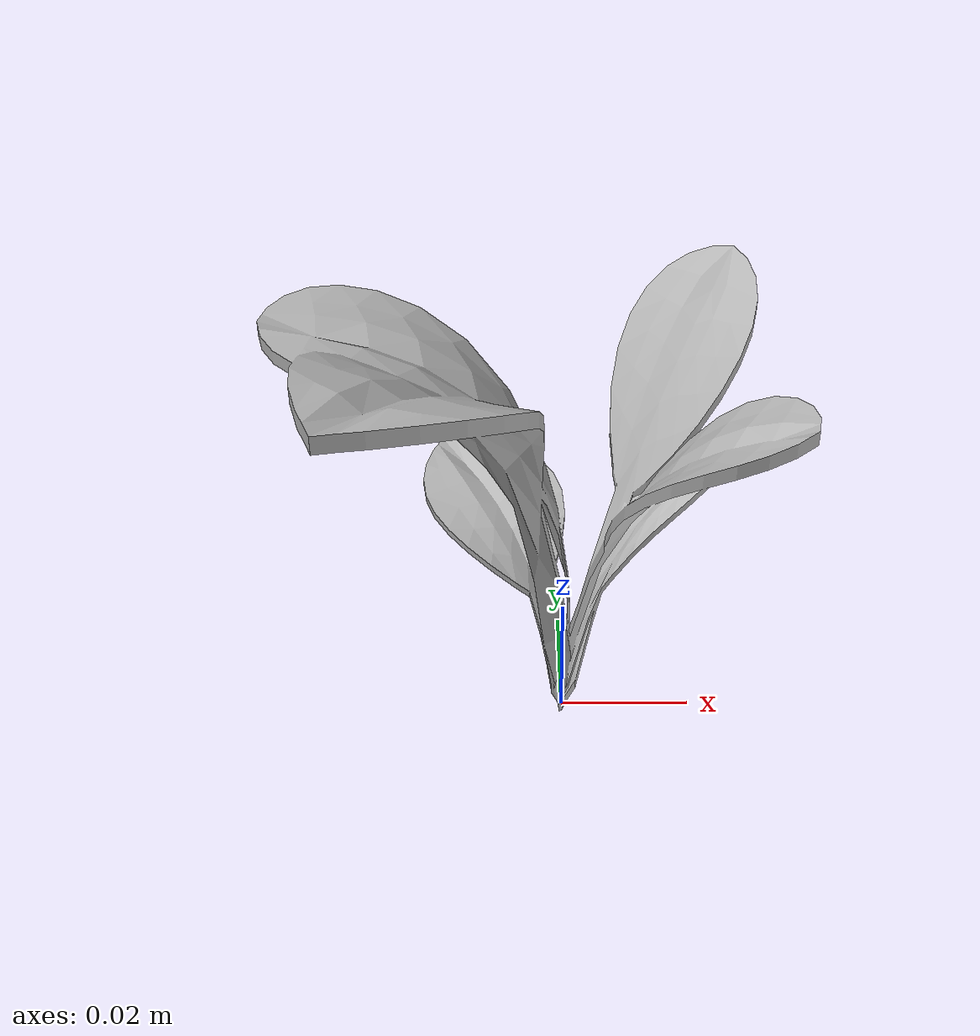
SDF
<sdf version="1.6">
  <model name="sugar_beet_53">
    <static>true</static>
    <link name="body">
      <visual name="visual">
        <geometry>
          <mesh>
            <uri>file:///sugar_beet_53/media/sugar_beet.dae</uri>
          </mesh>
        </geometry>
      </visual>
    </link>
  </model>
</sdf>
